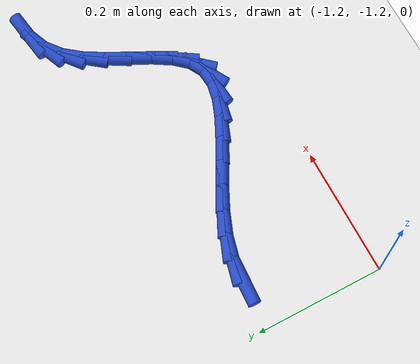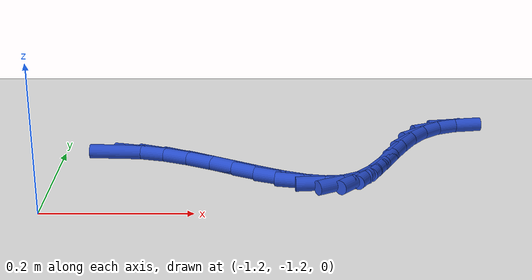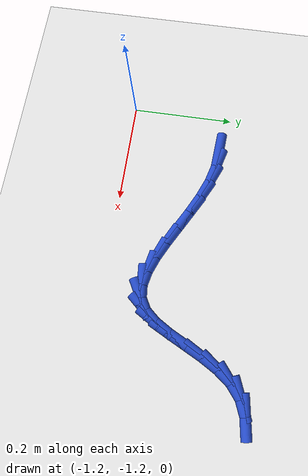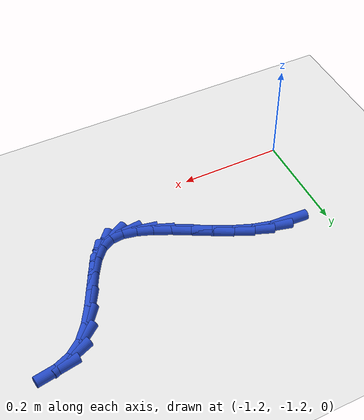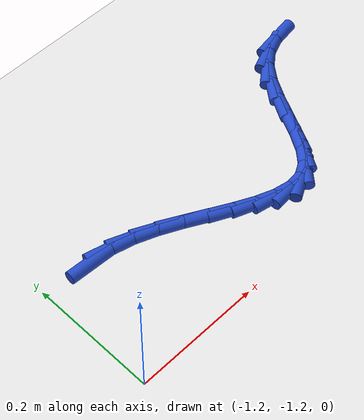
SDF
<sdf version="1.6">
 <world name="default">
  <model name="ground_plane">
   <static>1</static>
   <link name="link">
    <collision name="collision">
     <geometry><plane><normal>0 0 1</normal><size>100 100</size></plane></geometry>
     <surface><friction><ode><mu>100</mu><mu2>50</mu2></ode></friction></surface>
    </collision>
    <visual name="visual">
     <cast_shadows>0</cast_shadows>
     <geometry><plane><normal>0 0 1</normal><size>100 100</size></plane></geometry>
     <material>
      <script><uri>file://media/materials/scripts/gazebo.material</uri><name>Gazebo/WhiteGlow</name></script>
     </material>
    </visual>
   </link>
  </model>
  <model name="line">
   <link name="link_182">
    <pose>-1.1219694365190995 -1.0164666633224315 0.01 0 1.57 -0.05758904883517506</pose>
    <collision name="collision">
     <geometry><cylinder><radius>0.01</radius><length>0.08</length></cylinder></geometry>
    </collision>
    <visual name="visual">
     <material>
      <script><name>Gazebo/Blue</name><uri>file://media/materials/scripts/gazebo.material</uri></script>
     </material>
     <geometry><cylinder><radius>0.01</radius><length>0.08</length></cylinder></geometry>
    </visual>
   </link>
   <link name="link_183">
    <pose>-1.0882974387513873 -1.018407948210407 0.01 0 1.57 -0.24855316295433436</pose>
    <collision name="collision">
     <geometry><cylinder><radius>0.01</radius><length>0.08</length></cylinder></geometry>
    </collision>
    <visual name="visual">
     <material>
      <script><name>Gazebo/Blue</name><uri>file://media/materials/scripts/gazebo.material</uri></script>
     </material>
     <geometry><cylinder><radius>0.01</radius><length>0.08</length></cylinder></geometry>
    </visual>
   </link>
   <link name="link_184">
    <pose>-1.0539695810657674 -1.0271204037766806 0.01 0 1.57 -0.37671734480116964</pose>
    <collision name="collision">
     <geometry><cylinder><radius>0.01</radius><length>0.08</length></cylinder></geometry>
    </collision>
    <visual name="visual">
     <material>
      <script><name>Gazebo/Blue</name><uri>file://media/materials/scripts/gazebo.material</uri></script>
     </material>
     <geometry><cylinder><radius>0.01</radius><length>0.08</length></cylinder></geometry>
    </visual>
   </link>
   <link name="link_185">
    <pose>-1.019406697426924 -1.0407938729368613 0.01 0 1.57 -0.4551360448385336</pose>
    <collision name="collision">
     <geometry><cylinder><radius>0.01</radius><length>0.08</length></cylinder></geometry>
    </collision>
    <visual name="visual">
     <material>
      <script><name>Gazebo/Blue</name><uri>file://media/materials/scripts/gazebo.material</uri></script>
     </material>
     <geometry><cylinder><radius>0.01</radius><length>0.08</length></cylinder></geometry>
    </visual>
   </link>
   <link name="link_186">
    <pose>-0.9850296217995446 -1.057618198606557 0.01 0 1.57 -0.49350385199992514</pose>
    <collision name="collision">
     <geometry><cylinder><radius>0.01</radius><length>0.08</length></cylinder></geometry>
    </collision>
    <visual name="visual">
     <material>
      <script><name>Gazebo/Blue</name><uri>file://media/materials/scripts/gazebo.material</uri></script>
     </material>
     <geometry><cylinder><radius>0.01</radius><length>0.08</length></cylinder></geometry>
    </visual>
   </link>
   <link name="link_187">
    <pose>-0.9512591881483132 -1.0757832237013765 0.01 0 1.57 -0.4954729977284232</pose>
    <collision name="collision">
     <geometry><cylinder><radius>0.01</radius><length>0.08</length></cylinder></geometry>
    </collision>
    <visual name="visual">
     <material>
      <script><name>Gazebo/Blue</name><uri>file://media/materials/scripts/gazebo.material</uri></script>
     </material>
     <geometry><cylinder><radius>0.01</radius><length>0.08</length></cylinder></geometry>
    </visual>
   </link>
   <link name="link_188">
    <pose>-0.918516230437915 -1.0934787911369275 0.01 0 1.57 -0.4577154825968757</pose>
    <collision name="collision">
     <geometry><cylinder><radius>0.01</radius><length>0.08</length></cylinder></geometry>
    </collision>
    <visual name="visual">
     <material>
      <script><name>Gazebo/Blue</name><uri>file://media/materials/scripts/gazebo.material</uri></script>
     </material>
     <geometry><cylinder><radius>0.01</radius><length>0.08</length></cylinder></geometry>
    </visual>
   </link>
   <link name="link_189">
    <pose>-0.8872215826330352 -1.1088947438288195 0.01 0 1.57 -0.3674307582266355</pose>
    <collision name="collision">
     <geometry><cylinder><radius>0.01</radius><length>0.08</length></cylinder></geometry>
    </collision>
    <visual name="visual">
     <material>
      <script><name>Gazebo/Blue</name><uri>file://media/materials/scripts/gazebo.material</uri></script>
     </material>
     <geometry><cylinder><radius>0.01</radius><length>0.08</length></cylinder></geometry>
    </visual>
   </link>
   <link name="link_190">
    <pose>-0.8577960786983593 -1.1202209246926604 0.01 0 1.57 -0.19736532437572044</pose>
    <collision name="collision">
     <geometry><cylinder><radius>0.01</radius><length>0.08</length></cylinder></geometry>
    </collision>
    <visual name="visual">
     <material>
      <script><name>Gazebo/Blue</name><uri>file://media/materials/scripts/gazebo.material</uri></script>
     </material>
     <geometry><cylinder><radius>0.01</radius><length>0.08</length></cylinder></geometry>
    </visual>
   </link>
   <link name="link_191">
    <pose>-0.8306605525985723 -1.1256471766440592 0.01 0 1.57 0.09323395625125361</pose>
    <collision name="collision">
     <geometry><cylinder><radius>0.01</radius><length>0.08</length></cylinder></geometry>
    </collision>
    <visual name="visual">
     <material>
      <script><name>Gazebo/Blue</name><uri>file://media/materials/scripts/gazebo.material</uri></script>
     </material>
     <geometry><cylinder><radius>0.01</radius><length>0.08</length></cylinder></geometry>
    </visual>
   </link>
   <link name="link_192">
    <pose>-0.8062358382983588 -1.1233633425986238 0.01 0 1.57 0.5036359436593967</pose>
    <collision name="collision">
     <geometry><cylinder><radius>0.01</radius><length>0.08</length></cylinder></geometry>
    </collision>
    <visual name="visual">
     <material>
      <script><name>Gazebo/Blue</name><uri>file://media/materials/scripts/gazebo.material</uri></script>
     </material>
     <geometry><cylinder><radius>0.01</radius><length>0.08</length></cylinder></geometry>
    </visual>
   </link>
   <link name="link_193">
    <pose>-0.7849228925881422 -1.1116192065051262 0.01 0 1.57 0.8490753475747385</pose>
    <collision name="collision">
     <geometry><cylinder><radius>0.01</radius><length>0.08</length></cylinder></geometry>
    </collision>
    <visual name="visual">
     <material>
      <script><name>Gazebo/Blue</name><uri>file://media/materials/scripts/gazebo.material</uri></script>
     </material>
     <geometry><cylinder><radius>0.01</radius><length>0.08</length></cylinder></geometry>
    </visual>
   </link>
   <link name="link_194">
    <pose>-0.7664651649119381 -1.0906473124941427 0.01 0 1.57 1.0275485863227651</pose>
    <collision name="collision">
     <geometry><cylinder><radius>0.01</radius><length>0.08</length></cylinder></geometry>
    </collision>
    <visual name="visual">
     <material>
      <script><name>Gazebo/Blue</name><uri>file://media/materials/scripts/gazebo.material</uri></script>
     </material>
     <geometry><cylinder><radius>0.01</radius><length>0.08</length></cylinder></geometry>
    </visual>
   </link>
   <link name="link_195">
    <pose>-0.7498132309484327 -1.0630711719450354 0.01 0 1.57 1.1011665526304246</pose>
    <collision name="collision">
     <geometry><cylinder><radius>0.01</radius><length>0.08</length></cylinder></geometry>
    </collision>
    <visual name="visual">
     <material>
      <script><name>Gazebo/Blue</name><uri>file://media/materials/scripts/gazebo.material</uri></script>
     </material>
     <geometry><cylinder><radius>0.01</radius><length>0.08</length></cylinder></geometry>
    </visual>
   </link>
   <link name="link_196">
    <pose>-0.7338704181329075 -1.0316567766766558 0.01 0 1.57 1.1050077319428133</pose>
    <collision name="collision">
     <geometry><cylinder><radius>0.01</radius><length>0.08</length></cylinder></geometry>
    </collision>
    <visual name="visual">
     <material>
      <script><name>Gazebo/Blue</name><uri>file://media/materials/scripts/gazebo.material</uri></script>
     </material>
     <geometry><cylinder><radius>0.01</radius><length>0.08</length></cylinder></geometry>
    </visual>
   </link>
   <link name="link_197">
    <pose>-0.7175400539006448 -0.9991701185078562 0.01 0 1.57 1.0463143035293179</pose>
    <collision name="collision">
     <geometry><cylinder><radius>0.01</radius><length>0.08</length></cylinder></geometry>
    </collision>
    <visual name="visual">
     <material>
      <script><name>Gazebo/Blue</name><uri>file://media/materials/scripts/gazebo.material</uri></script>
     </material>
     <geometry><cylinder><radius>0.01</radius><length>0.08</length></cylinder></geometry>
    </visual>
   </link>
   <link name="link_198">
    <pose>-0.6997254656869256 -0.9683771892574884 0.01 0 1.57 0.9117888670371521</pose>
    <collision name="collision">
     <geometry><cylinder><radius>0.01</radius><length>0.08</length></cylinder></geometry>
    </collision>
    <visual name="visual">
     <material>
      <script><name>Gazebo/Blue</name><uri>file://media/materials/scripts/gazebo.material</uri></script>
     </material>
     <geometry><cylinder><radius>0.01</radius><length>0.08</length></cylinder></geometry>
    </visual>
   </link>
   <link name="link_199">
    <pose>-0.679329980927032 -0.9420439807444043 0.01 0 1.57 0.673614325436388</pose>
    <collision name="collision">
     <geometry><cylinder><radius>0.01</radius><length>0.08</length></cylinder></geometry>
    </collision>
    <visual name="visual">
     <material>
      <script><name>Gazebo/Blue</name><uri>file://media/materials/scripts/gazebo.material</uri></script>
     </material>
     <geometry><cylinder><radius>0.01</radius><length>0.08</length></cylinder></geometry>
    </visual>
   </link>
   <link name="link_200">
    <pose>-0.6552916516909175 -0.9228576918356742 0.01 0 1.57 0.3866080145735692</pose>
    <collision name="collision">
     <geometry><cylinder><radius>0.01</radius><length>0.08</length></cylinder></geometry>
    </collision>
    <visual name="visual">
     <material>
      <script><name>Gazebo/Blue</name><uri>file://media/materials/scripts/gazebo.material</uri></script>
     </material>
     <geometry><cylinder><radius>0.01</radius><length>0.08</length></cylinder></geometry>
    </visual>
   </link>
   <link name="link_201">
    <pose>-0.6274262827070903 -0.911513830958662 0.01 0 1.57 0.1570899578244586</pose>
    <collision name="collision">
     <geometry><cylinder><radius>0.01</radius><length>0.08</length></cylinder></geometry>
    </collision>
    <visual name="visual">
     <material>
      <script><name>Gazebo/Blue</name><uri>file://media/materials/scripts/gazebo.material</uri></script>
     </material>
     <geometry><cylinder><radius>0.01</radius><length>0.08</length></cylinder></geometry>
    </visual>
   </link>
  </model>
 </world>
</sdf>
